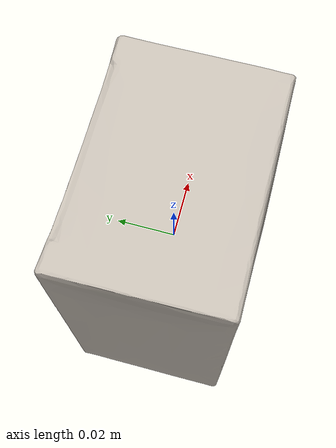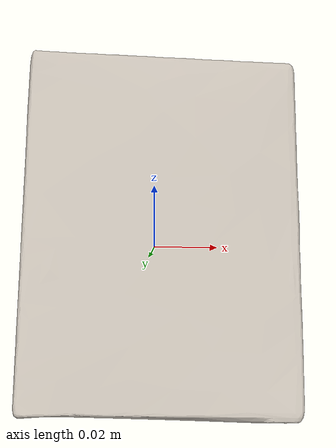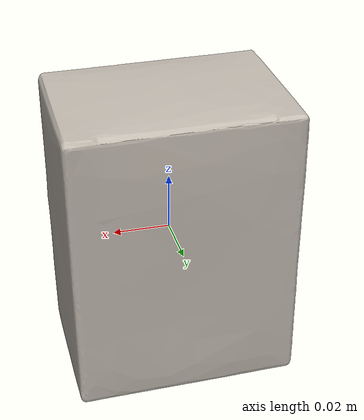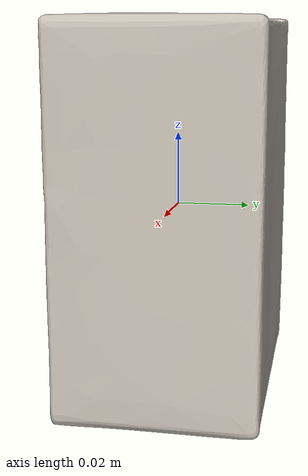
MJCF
<mujoco model="07">
  <default>
    <default class="07/visual">
      <geom group="2" type="mesh" contype="0" conaffinity="0"/>
    </default>
    <default class="07/collision">
      <geom group="3" type="mesh"/>
    </default>
  </default>
  <asset>
    <texture type="2d" name="img7" file="objects/07/img7.png"/>
    <material name="material_0.007" texture="img7" specular="0.0" shininess="0.0"/>
    <mesh file="objects/07/07.obj"/>
  </asset>
  <worldbody>
    <body name="07">
      <joint name="obj07" type="free"/>
      <geom material="material_0.007" mesh="07" class="07/visual"/>
      <geom mesh="07" class="07/collision" mass="0.5"/>
    </body>
  </worldbody>
</mujoco>
